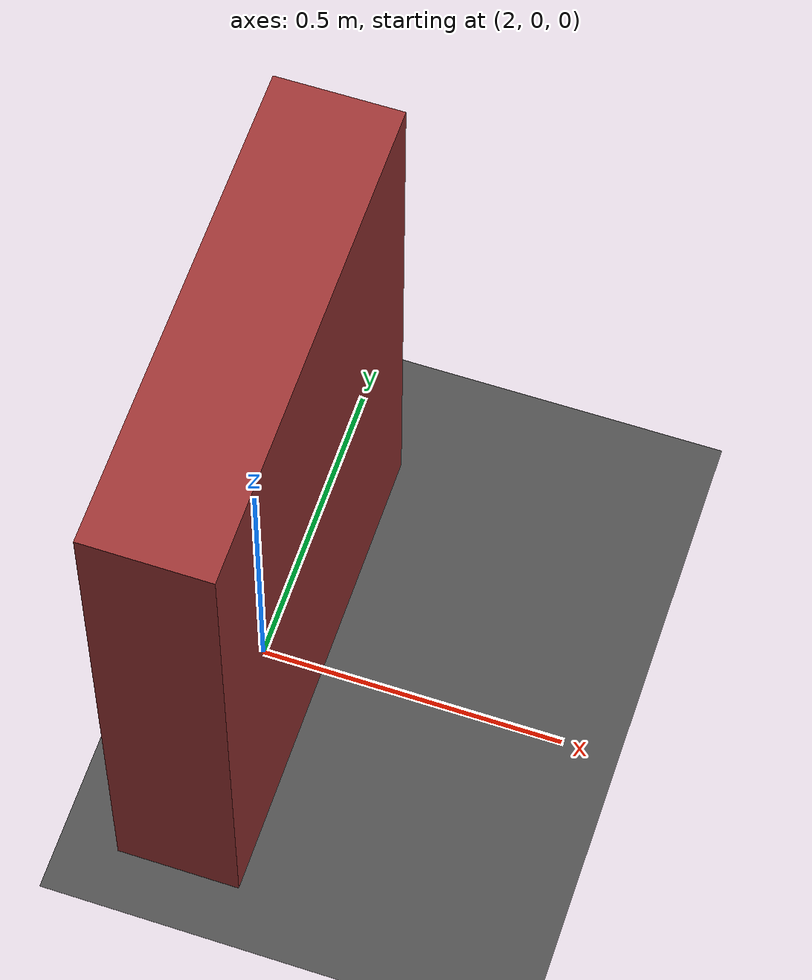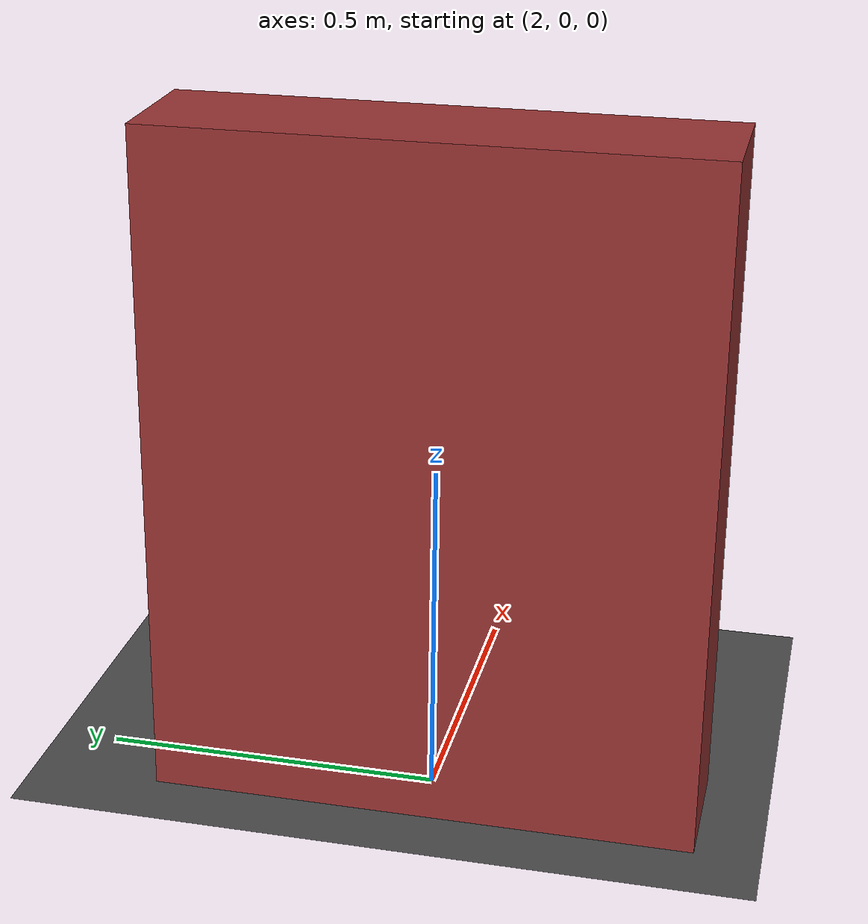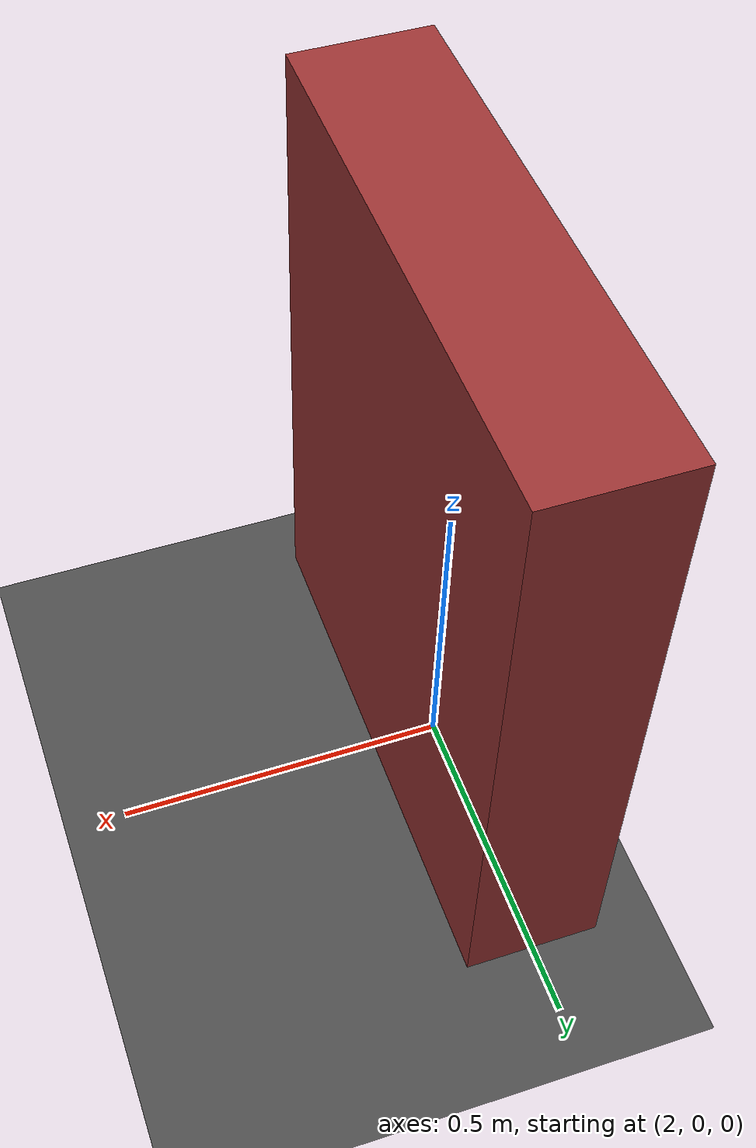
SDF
<?xml version="1.0" ?>
<sdf version="1.8">
    <world name="benchmark_obstacle">
        <physics name="1ms" type="ignored">
            <max_step_size>0.001</max_step_size>
            <real_time_factor>1.0</real_time_factor>
        </physics>
        <plugin filename="gz-sim-physics-system" name="gz::sim::systems::Physics"/>
        <plugin filename="gz-sim-sensors-system" name="gz::sim::systems::Sensors">
            <render_engine>ogre2</render_engine>
        </plugin>
        <plugin filename="gz-sim-user-commands-system" name="gz::sim::systems::UserCommands"/>
        <plugin filename="gz-sim-scene-broadcaster-system" name="gz::sim::systems::SceneBroadcaster"/>
        <plugin filename="gz-sim-contact-system" name="gz::sim::systems::Contact"/>
        <plugin filename="gz-sim-imu-system" name="gz::sim::systems::Imu"/>

        <light type="directional" name="sun">
            <cast_shadows>true</cast_shadows>
            <pose>0 0 10 0 0 0</pose>
            <diffuse>0.8 0.8 0.8 1</diffuse>
            <specular>0.2 0.2 0.2 1</specular>
            <direction>-0.5 0.1 -0.9</direction>
        </light>

        <!-- THE SINGLE STATIC BENCHMARK OBSTACLE -->
        <!-- Placed exactly halfway between start (0,0) and target (4,0) -->
        <model name="center_block">
            <static>true</static>
            <pose>2.0 0.0 0.5 0 0 0</pose>
            <link name="link">
                <!-- 0.8m wide box: Forces the robot to strafe at least 0.4m laterally -->
                <collision name="c1"><geometry><box><size>0.2 0.8 1.0</size></box></geometry></collision>
                <visual name="v1"><geometry><box><size>0.2 0.8 1.0</size></box></geometry>
                    <material><ambient>0.6 0.2 0.2 1</ambient><diffuse>0.6 0.2 0.2 1</diffuse></material>
                </visual>
            </link>
        </model>

        <model name="ground_plane">
            <static>true</static>
            <link name="link">
                <collision name="collision"><geometry><plane><normal>0 0 1</normal><size>20 20</size></plane></geometry></collision>
                <visual name="visual">
                    <geometry><plane><normal>0 0 1</normal><size>20 20</size></plane></geometry>
                    <material><ambient>0.3 0.3 0.3 1</ambient><diffuse>0.3 0.3 0.3 1</diffuse></material>
                </visual>
            </link>
        </model>
    </world>
</sdf>
